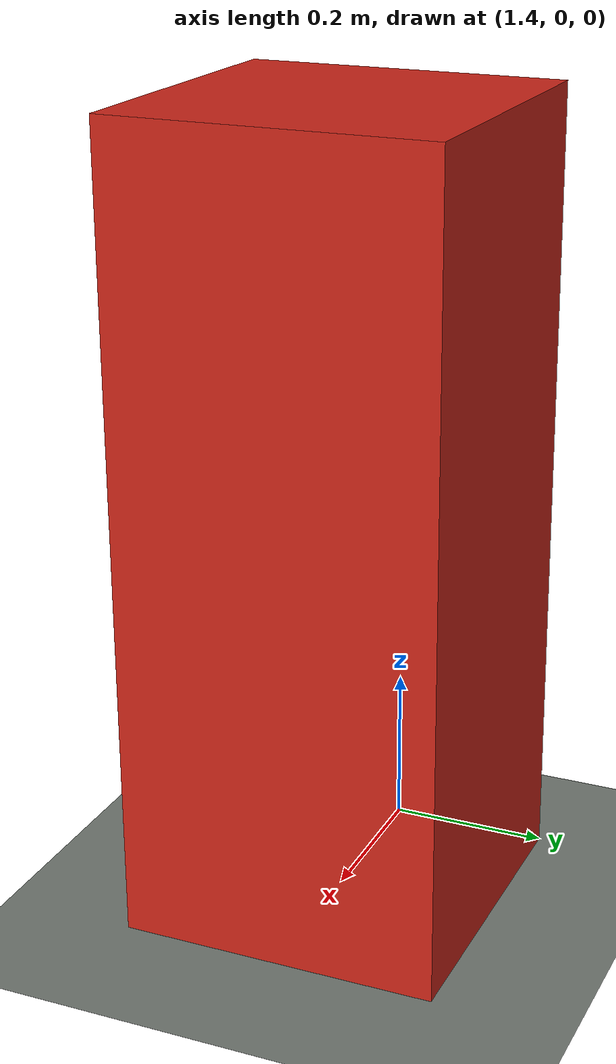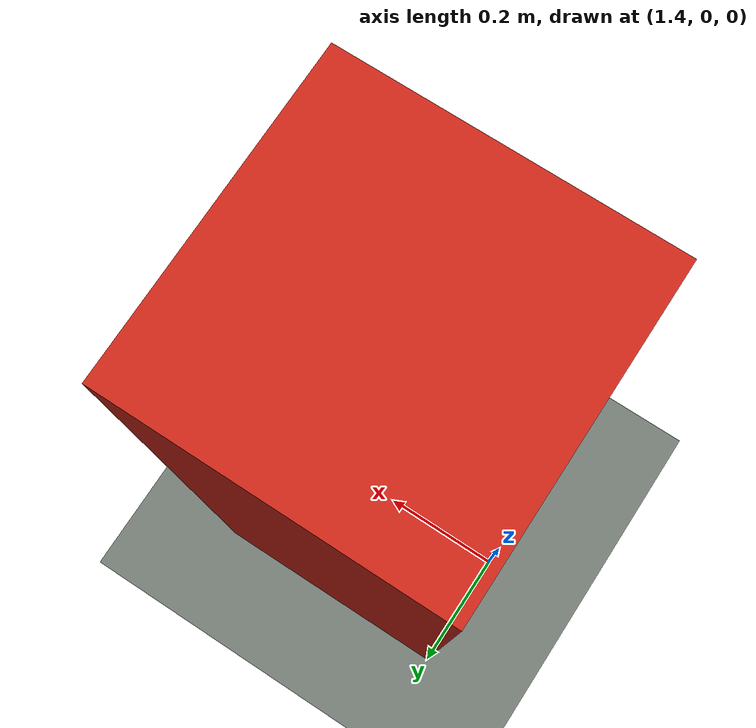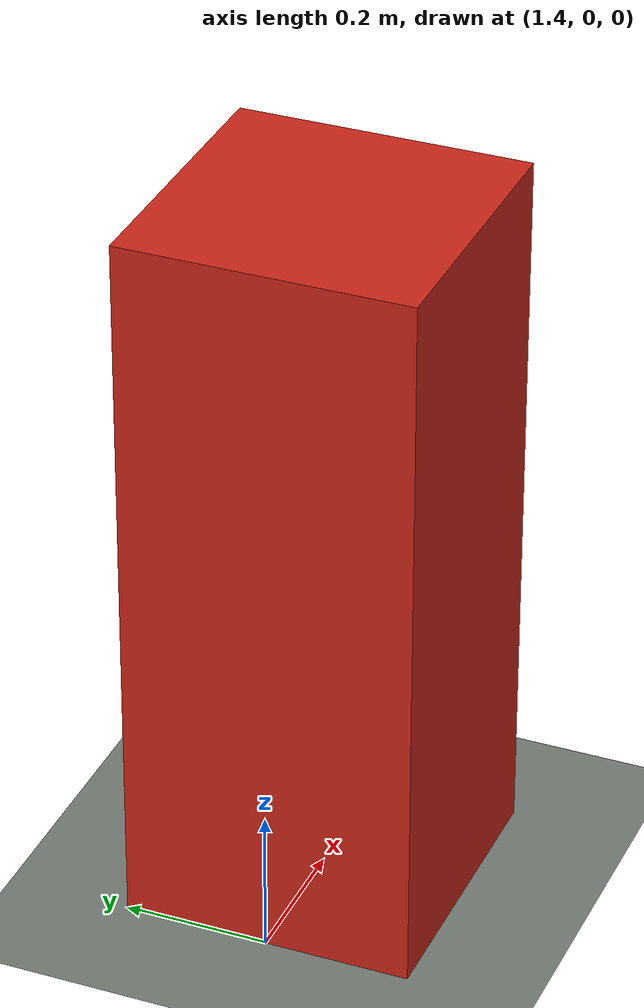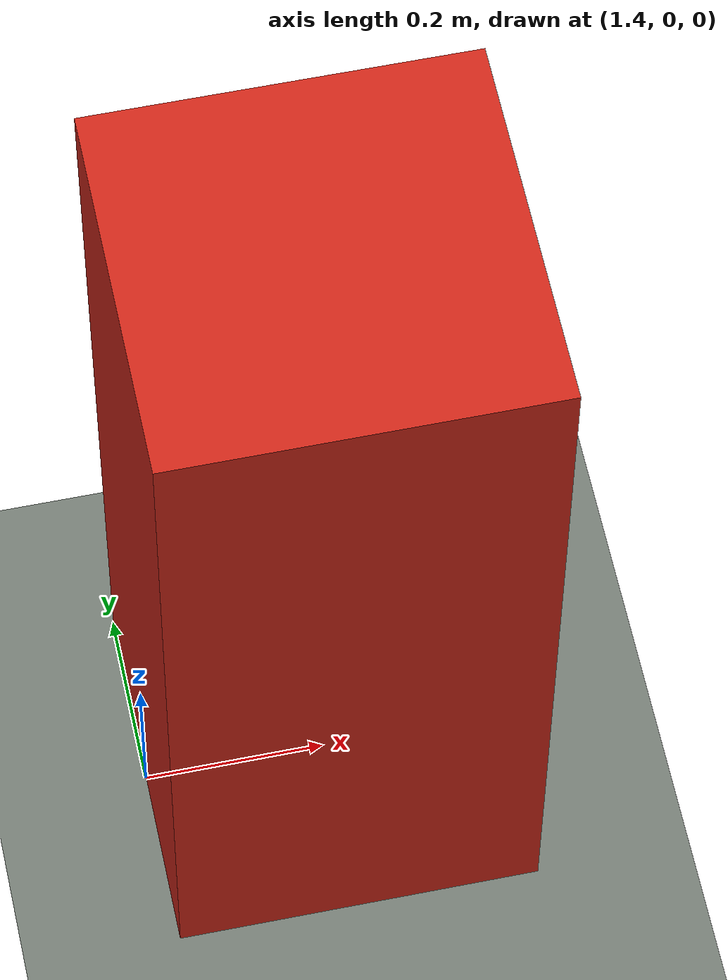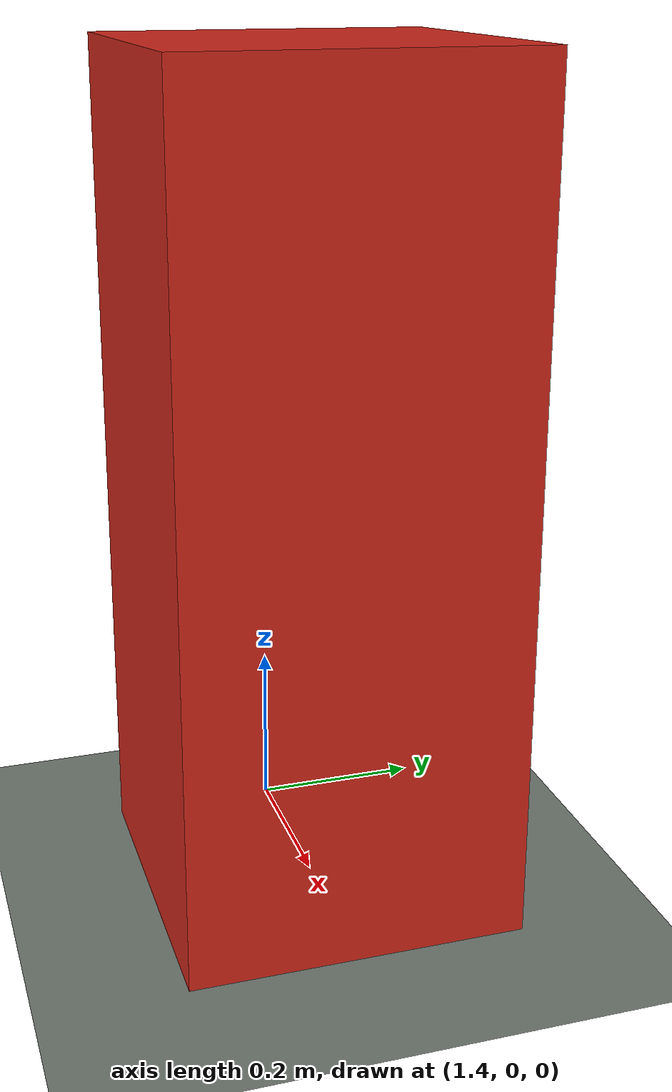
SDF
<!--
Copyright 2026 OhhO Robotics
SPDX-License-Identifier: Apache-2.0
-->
<?xml version="1.0" ?>
<sdf version="1.8">
  <world name="flat">

    <physics name="phys" type="ignored">
      <max_step_size>0.002</max_step_size>
      <real_time_factor>1.0</real_time_factor>
      <real_time_update_rate>500</real_time_update_rate>
    </physics>

    <plugin filename="gz-sim-physics-system" name="gz::sim::systems::Physics"/>
    <plugin filename="gz-sim-user-commands-system" name="gz::sim::systems::UserCommands"/>
    <plugin filename="gz-sim-scene-broadcaster-system" name="gz::sim::systems::SceneBroadcaster"/>
    <plugin filename="gz-sim-sensors-system" name="gz::sim::systems::Sensors">
      <render_engine>ogre2</render_engine>
    </plugin>
    <plugin filename="gz-sim-imu-system" name="gz::sim::systems::Imu"/>

    <light type="directional" name="sun">
      <cast_shadows>false</cast_shadows>
      <pose>0 0 10 0 0 0</pose>
      <diffuse>0.9 0.9 0.9 1</diffuse>
      <specular>0.2 0.2 0.2 1</specular>
      <direction>-0.3 0.2 -0.9</direction>
    </light>

    <model name="ground_plane">
      <static>true</static>
      <link name="link">
        <collision name="collision">
          <geometry>
            <plane>
              <normal>0 0 1</normal>
              <size>100 100</size>
            </plane>
          </geometry>
        </collision>
        <visual name="visual">
          <geometry>
            <plane>
              <normal>0 0 1</normal>
              <size>100 100</size>
            </plane>
          </geometry>
          <material>
            <ambient>0.45 0.48 0.45 1</ambient>
            <diffuse>0.45 0.48 0.45 1</diffuse>
          </material>
        </visual>
      </link>
    </model>

    <!-- In front of the robot (+X) so /scan and the front camera are not empty. -->
    <model name="marker">
      <static>true</static>
      <pose>1.6 0 0.5 0 0 0</pose>
      <link name="link">
        <collision name="collision">
          <geometry><box><size>0.4 0.4 1.0</size></box></geometry>
        </collision>
        <visual name="visual">
          <geometry><box><size>0.4 0.4 1.0</size></box></geometry>
          <material>
            <ambient>0.8 0.15 0.1 1</ambient>
            <diffuse>0.8 0.15 0.1 1</diffuse>
          </material>
        </visual>
      </link>
    </model>

  </world>
</sdf>
